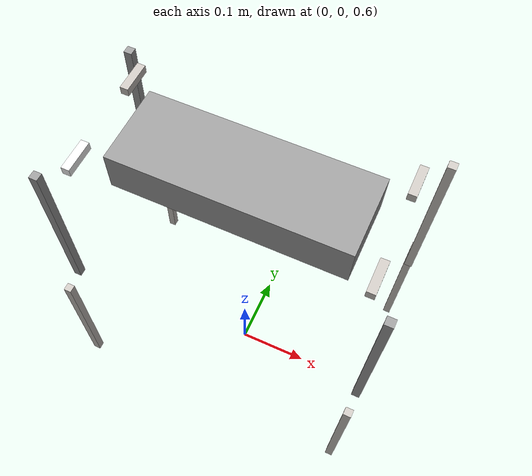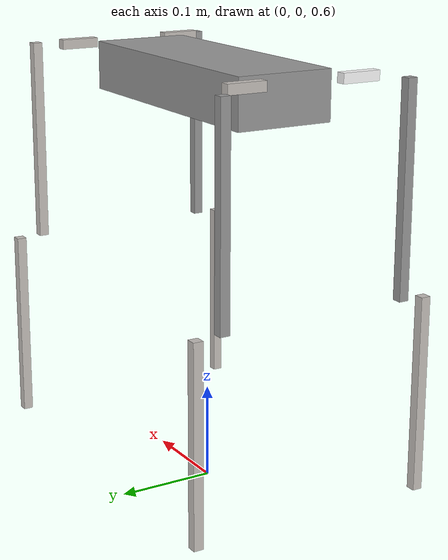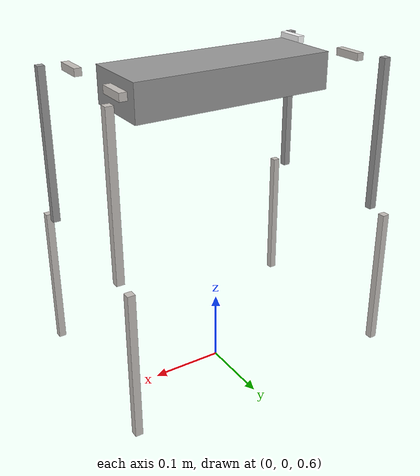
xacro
<?xml version="1.0"?>
<!--created by your dad ,holmes-->
<robot xmlns:xacro="http://www.ros.org/wiki/xacro" name="dog_v4">

  <link name="world"/>

  <joint name="fixed" type="fixed">
    <parent link="world"/>
    <child link="body_link"/>
    <origin
      xyz="0 0 1"
      rpy="0 0 0" />
  </joint>

  <link name="body_link">/
    <inertial>
      <origin
        xyz="3.59365399029842E-08 2.29125606890368E-07 0.0454498530336411"
        rpy="0 0 0" />
      <mass
        value="25.0794314099621" />
      <inertia
        ixx="0.0822942642469674"
        ixy="-1.78120229421848E-08"
        ixz="8.54734089425751E-08"
        iyy="0.105805896621498"
        iyz="2.84371497321219E-07"
        izz="0.156039805240398" />
    </inertial>
    <visual>
      <origin
        xyz="0 0 0.025"
        rpy="0 0 0" />
      <geometry>
        <box size="0.28 0.1 0.05"/>
      </geometry>
      <material
        name="">
        <color
          rgba="0.6 0.6 0.6 1" />
      </material>
    </visual>
    <collision>
      <origin
        xyz="0 0 0.025"
        rpy="0 0 0" />
      <geometry>
        <box size="0.28 0.1 0.05"/>
      </geometry>
    </collision>
  </link>
  <link name="LF_top_link">
    <inertial>
      <origin
        xyz="0.02639 0.00062285 1.3269E-05"
        rpy="0 0 0" />
      <mass
        value="0.1574" />
      <inertia
        ixx="9.4106E-05"
        ixy="-9.8768E-07"
        ixz="-1.1286E-07"
        iyy="0.00012496"
        iyz="-9.7383E-09"
        izz="5.9686E-05" />
    </inertial>
    <visual>
      <origin
        xyz="0.0263235 0.010625 0"
        rpy="0 0 0" />
      <geometry>
        <box size="0.01 0.04 0.01"/>
      </geometry>
      <material
        name="">
        <color
          rgba="0.77647 0.75686 0.73725 1" />
      </material>
    </visual>
    <collision>
      <origin
        xyz="0.0263235 0.010625 0"
        rpy="0 0 0" />
      <geometry>
          <box size="0.01 0.04 0.01"/>
      </geometry>
    </collision>
  </link>
  <joint name="LF_top_joint" type="continuous">
    <origin
      xyz="0.141 0.05 0.04545"
      rpy="0 0 0" />
    <parent
      link="body_link" />
    <child
      link="LF_top_link" />
    <axis
      xyz="1 0 0" />
  </joint>
  <link name="LF_mid_link">
    <inertial>
      <origin
        xyz="-1.22483682477581E-05 0.0487648912011176 -0.0633406233333356"
        rpy="0 0 0" />
      <mass
        value="0.738937110035494" />
      <inertia
        ixx="0.00103721052037978"
        ixy="-2.04200549677798E-08"
        ixz="-4.21702731113156E-08"
        iyy="0.00123011741777564"
        iyz="1.52024995628507E-05"
        izz="0.000267793821007483" />
    </inertial>
    <visual>
      <origin
        xyz=' 0.000 0.02675 -0.10569 '
        rpy="0 0 0" />
      <geometry>
        <box size="0.01 0.01 -0.21138"/>
      </geometry>
      <material
        name="">
        <color
          rgba="0.776470588235294 0.756862745098039 0.737254901960784 1" />
      </material>
    </visual>
    <collision>
      <origin
        xyz=' 0.000 0.02675 -0.10569 '
        rpy="0 0 0" />
      <geometry>
          <box size="0.01 0.01 -0.21138"/>
      </geometry>
    </collision>
  </link>
  <joint name="LF_mid_joint" type="continuous">
    <origin
      xyz="0.052647 0.02125 9.2724E-05"
      rpy="0 0 0" />
    <parent
      link="LF_top_link" />
    <child
      link="LF_mid_link" />
    <axis
      xyz="0 -1 0" />
  </joint>
  <link name="LF_down_link">
    <inertial>
      <origin
        xyz="-5.2121634081137E-05 0.00100252547655214 -0.0734382702906037"
        rpy="0 0 0" />
      <mass
        value="0.300551677258286" />
      <inertia
        ixx="0.000336998224662871"
        ixy="5.09859916248364E-11"
        ixz="1.16147313952368E-10"
        iyy="0.000352769216727733"
        iyz="-1.47711505397845E-11"
        izz="2.93076635016167E-05" />
    </inertial>
    <visual>
      <origin
        xyz="0 0.0 -0.1"
        rpy="0 0 0" />
      <geometry>
        <box size="0.01 0.01 0.2"/>
      </geometry>
      <material
        name="">
        <color
          rgba="0.776470588235294 0.756862745098039 0.737254901960784 1" />
      </material>
    </visual>
    <collision>
      <origin
        xyz="0 0 -0.1"
        rpy="0 0 0" />
      <geometry>
        <box size="0.01 0.01 0.2"/>
      </geometry>
    </collision>
  </link>
  <joint name="LF_down_joint" type="continuous">
    <origin
      xyz="0 0.0535 -0.21138"
      rpy="0 0 0" />
    <parent
      link="LF_mid_link" />
    <child
      link="LF_down_link" />
    <axis
      xyz="0 -1 0" />
  </joint>
  <link
    name="RF_top_link">
    <inertial>
      <origin
        xyz="0.0263901999841434 -0.000622848908864299 -1.32687268125098E-05"
        rpy="0 0 0" />
      <mass
        value="0.15740044195971" />
      <inertia
        ixx="9.41058670909895E-05"
        ixy="9.87683421374913E-07"
        ixz="1.1285668464894E-07"
        iyy="0.00012495859879355"
        iyz="-9.73826160045511E-09"
        izz="5.96858784543533E-05" />
    </inertial>
    <visual>
      <origin
        xyz=" 0.0263235 -0.010625 4.6362e-05 "
        rpy="0 0 0" />
      <geometry>
          <box size="0.01 0.04 0.01"/>
      </geometry>
      <material
        name="">
        <color
          rgba="0.776470588235294 0.756862745098039 0.737254901960784 1" />
      </material>
    </visual>
    <collision>
      <origin
        xyz=" 0.0263235 -0.010625 4.6362e-05 "
        rpy="0 0 0" />
      <geometry>
        <box size="0.01 0.04 0.01"/>
      </geometry>
    </collision>
  </link>
  <joint
    name="RF_top_joint"
    type="continuous">
    <origin
      xyz="0.141 -0.05 0.04545"
      rpy="0 0 0" />
    <parent
      link="body_link" />
    <child
      link="RF_top_link" />
    <axis
      xyz="1 0 0" />
  </joint>
  <link
    name="RF_mid_link">
    <inertial>
      <origin
        xyz="7.52172599330359E-05 -0.0487649107544759 -0.063515028561511"
        rpy="0 0 0" />
      <mass
        value="0.738937036461301" />
      <inertia
        ixx="0.0010372109312777"
        ixy="-2.04489930527831E-08"
        ixz="3.64841294031766E-08"
        iyy="0.0012301178223017"
        iyz="-1.52021638758677E-05"
        izz="0.000267793766462554" />
    </inertial>
    <visual>
      <origin
        xyz=" 0 -0.02675 -0.10578 "
        rpy="0 0 0" />
      <geometry>
          <box size="0.01 -0.01 -0.21156"/>
      </geometry>
      <material
        name="">
        <color
          rgba="0.6 0.6 0.6 1" />
      </material>
    </visual>
    <collision>
      <origin
        xyz=" 0 -0.02675 -0.10578 "
        rpy="0 0 0" />
      <geometry>
          <box size="0.01 -0.01 -0.21156"/>
      </geometry>
    </collision>
  </link>
  <joint
    name="RF_mid_joint"
    type="continuous">
    <origin
      xyz="0.052647 -0.02125 9.2724E-05"
      rpy="0 0 0" />
    <parent
      link="RF_top_link" />
    <child
      link="RF_mid_link" />
    <axis
      xyz="0 -1 0" />
  </joint>
  <link
    name="RF_down_link">
    <inertial>
      <origin
        xyz="5.21297187678349E-05 -0.00100252409918886 -0.0734382823671863"
        rpy="0 0 0" />
      <mass
        value="0.300551781300463" />
      <inertia
        ixx="0.000336998255214494"
        ixy="4.78659762699933E-11"
        ixz="1.16223885811268E-10"
        iyy="0.000352769237624744"
        iyz="1.32635609364215E-11"
        izz="2.93076599310258E-05" />
    </inertial>
    <visual>
      <origin
        xyz="0 0 -0.1"
        rpy="0 0 0" />
      <geometry>
        <box size="0.01 0.01 0.2"/>
      </geometry>
      <material
        name="">
        <color
          rgba="0.776470588235294 0.756862745098039 0.737254901960784 1" />
      </material>
    </visual>
    <collision>
      <origin
        xyz="0 0 -0.1"
        rpy="0 0 0" />
      <geometry>
        <box size="0.01 0.01 0.2"/>
      </geometry>
    </collision>
  </link>
  <joint
    name="RF_down_joint"
    type="continuous">
    <origin
      xyz="6.3049E-05 -0.0535 -0.21156"
      rpy="0 0 0" />
    <parent
      link="RF_mid_link" />
    <child
      link="RF_down_link" />
    <axis
      xyz="0 -1 0" />
  </joint>
  <link
    name="LB_top_link">
    <inertial>
      <origin
        xyz="-0.0263901989657993 0.000622847753819405 -1.32687274303489E-05"
        rpy="0 0 0" />
      <mass
        value="0.157400449286954" />
      <inertia
        ixx="9.41058660743391E-05"
        ixy="9.87684273498811E-07"
        ixz="-1.12856623194467E-07"
        iyy="0.000124958594900212"
        iyz="9.73826057587375E-09"
        izz="5.96858816789111E-05" />
    </inertial>
    <visual>
      <origin
        xyz=" -0.0263235 0.010625 4.6362e-05 "
        rpy="0 0 0" />
      <geometry>
        <box size="0.01 0.04 0.01"/>
      </geometry>
      <material
        name="">
        <color
          rgba="0.776470588235294 0.756862745098039 0.737254901960784 1" />
      </material>
    </visual>
    <collision>
      <origin
        xyz=" -0.0263235 0.010625 4.6362e-05 "
        rpy="0 0 0" />
      <geometry>
        <box size="0.01 0.04 0.01"/>
      </geometry>
    </collision>
  </link>
  <joint
    name="LB_top_joint"
    type="continuous">
    <origin
      xyz="-0.141 0.05 0.04545"
      rpy="0 0 0" />
    <parent
      link="body_link" />
    <child
      link="LB_top_link" />
    <axis
      xyz="1 0 0" />
  </joint>
  <link
    name="LB_mid_link">
    <inertial>
      <origin
        xyz="0.00010365 0.048765 -0.063485"
        rpy="0 0 0" />
      <mass
        value="0.73894" />
      <inertia
        ixx="0.0010372"
        ixy="-2.0457E-08"
        ixz="-3.9998E-08"
        iyy="0.0012301"
        iyz="1.5202E-05"
        izz="0.00026779" />
    </inertial>
    <visual>
      <origin
        xyz=" 0 0.02675 -0.105765 "
        rpy="0 0 0" />
      <geometry>
        <box size="0.01 0.01 -0.21153"/>
      </geometry>
      <material
        name="">
        <color
          rgba="0.6 0.6 0.6 1" />
      </material>
    </visual>
    <collision>
      <origin
        xyz="0 0.02675 -0.105765 "
        rpy="0 0 0" />
      <geometry>
        <box size="0.01 0.01 -0.21153"/>
      </geometry>
    </collision>
  </link>
  <joint
    name="LB_mid_joint"
    type="continuous">
    <origin
      xyz="-0.052647 0.02125 9.2724E-05"
      rpy="0 0 0" />
    <parent
      link="LB_top_link" />
    <child
      link="LB_mid_link" />
    <axis
      xyz="0 -1 0" />
  </joint>
  <link
    name="LB_down_link">
    <inertial>
      <origin
        xyz="-5.21254997021825E-05 0.00100252557683615 -0.073438254514421"
        rpy="0 0 0" />
      <mass
        value="0.300551676792456" />
      <inertia
        ixx="0.000336998282459304"
        ixy="4.86629441623418E-11"
        ixz="-3.49945646767292E-11"
        iyy="0.000352769263569714"
        iyz="-1.77505288707495E-11"
        izz="2.93076582702725E-05" />
    </inertial>
    <visual>
      <origin
        xyz="0 0 -0.1"
        rpy="0 0 0" />
      <geometry>
        <box size="0.01 0.01 0.2"/>
      </geometry>
      <material
        name="">
        <color
          rgba="0.776470588235294 0.756862745098039 0.737254901960784 1" />
      </material>
    </visual>
    <collision>
      <origin
        xyz="0 0 -0.1"
        rpy="0 0 0" />
      <geometry>
        <box size="0.01 0.01 0.2"/>
      </geometry>
    </collision>
  </link>
  <joint
    name="LB_down_joint"
    type="continuous">
    <origin
      xyz="0.00011587 0.0535 -0.21153"
      rpy="0 0 0" />
    <parent
      link="LB_mid_link" />
    <child
      link="LB_down_link" />
    <axis
      xyz="0 -1 0" />
  </joint>

  <link name="RB_top_link">
    <inertial>
      <origin
        xyz="-0.0263901989657993 -0.000622847753819405 1.32687274303489E-05"
        rpy="0 0 0" />
      <mass
        value="0.15740044195971" />
      <inertia
        ixx="9.41058660743391E-05"
        ixy="-9.87684273498811E-07"
        ixz="1.12856623194467E-07"
        iyy="0.000124958594900212"
        iyz="9.73826057587375E-09"
        izz="5.96858816789111E-05" />
    </inertial>

    <visual>
      <origin
        xyz=" -0.0263235 -0.010625 4.6362e-05 "
        rpy="0 0 0" />
      <geometry>
        <box size="0.01 0.04 0.01"/>
      </geometry>
      <material
        name="">
        <color
          rgba="1 1 1 1" />
      </material>
    </visual>
    <collision>
      <origin
        xyz=" -0.0263235 -0.010625 4.6362e-05 "
        rpy="0 0 0" />
      <geometry>
        <box size="0.01 0.04 0.01"/>
      </geometry>
    </collision>
  </link>
  <joint
    name="RB_top_joint"
    type="continuous">
    <origin
      xyz="-0.141 -0.05 0.04545"
      rpy="0 0 0" />
    <parent
      link="body_link" />
    <child
      link="RB_top_link" />
    <axis
      xyz="1 0 0" />
  </joint>
  <link
    name="RB_mid_link">
    <inertial>
      <origin
        xyz="1.221E-05 -0.048765 -0.063341"
        rpy="0 0 0" />
      <mass
        value="0.73894" />
      <inertia
        ixx="0.0010372"
        ixy="-2.0454E-08"
        ixz="3.9548E-08"
        iyy="0.0012301"
        iyz="-1.5202E-05"
        izz="0.00026779" />
    </inertial>
    <visual>
      <origin
        xyz=" 0.0 -0.02675 -0.10569 "
        rpy="0 0 0" />
      <geometry>
          <box size="0.01 0.01 -0.21138"/>
      </geometry>
      <material
        name="">
        <color
          rgba="0.6 0.6 0.6 1" />
      </material>
    </visual>
    <collision>
      <origin
        xyz=" 0.0 -0.02675 -0.10569 "
        rpy="0 0 0" />
      <geometry>
        <box size="0.01 0.01 -0.21138"/>
      </geometry>
    </collision>
  </link>
  <joint
    name="RB_mid_joint"
    type="continuous">
    <origin
      xyz="-0.052647 -0.02125 9.2724E-05"
      rpy="0 0 0" />
    <parent
      link="RB_top_link" />
    <child
      link="RB_mid_link" />
    <axis
      xyz="0 -1 0" />
  </joint>
  <link
    name="RB_down_link">
    <inertial>
      <origin
        xyz="5.2122E-05 -0.0010025 -0.073438"
        rpy="0 0 0" />
      <mass
        value="0.30055" />
      <inertia
        ixx="0.000337"
        ixy="5.026E-11"
        ixz="-1.1469E-10"
        iyy="0.00035277"
        iyz="1.4367E-11"
        izz="2.9308E-05" />
    </inertial>
    <visual>
      <origin
        xyz="0 0 -0.1"
        rpy="0 0 0" />
      <geometry>
        <box size="0.01 0.01 0.2"/>
      </geometry>
      <material
        name="">
        <color
          rgba="0.77647 0.75686 0.73725 1" />
      </material>
    </visual>
    <collision>
      <origin
        xyz="0 0 -0.1"
        rpy="0 0 0" />
      <geometry>
        <box size="0.01 0.01 0.2"/>
      </geometry>
    </collision>
  </link>
  <joint
    name="RB_down_joint"
    type="continuous">
    <origin
      xyz="0 -0.0535 -0.21138"
      rpy="0 0 0" />
    <parent
      link="RB_mid_link" />
    <child
      link="RB_down_link" />
    <axis
      xyz="0 -1 0" />
  </joint>

  <xacro:include filename="$(find dog_v4)/urdf/dog_v4_gazebo.xacro"/>

  <xacro:include filename="$(find dog_v4)/urdf/dog_v4_trans.xacro"/>
</robot>
